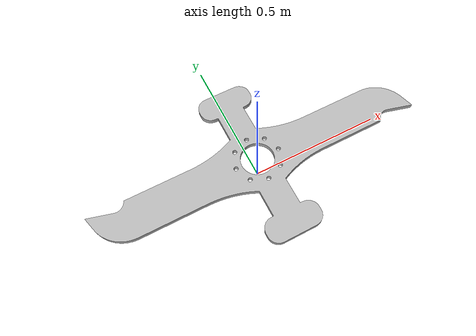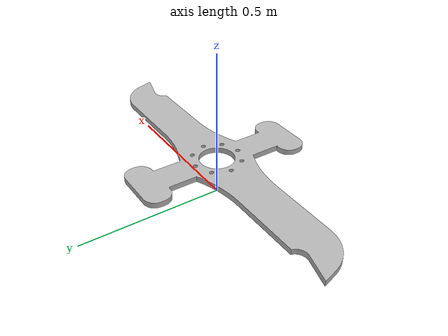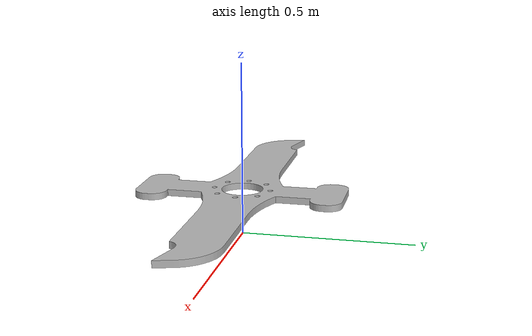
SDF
<?xml version='1.0'?>
<sdf version="1.6">
  <model name="spinner">
    <link name="spinner_link">
      <pose>0 0 0.1143 1.5708 0 0</pose>
      <inertial>
        <mass>31.751</mass>
        <inertia>
          <ixx>0.461</ixx>
          <ixy>0</ixy>
          <ixz>0</ixz>
          <iyy>2.897</iyy>
          <iyz>0</iyz>
          <izz>2.437</izz>
        </inertia>
      </inertial>
      <collision name="spinner_collision">
        <geometry>
          <mesh>
            <uri>file://meshes/BSWeapon_Stablizers1.stl</uri>
            <scale>1 1 1</scale>
          </mesh>
        </geometry>
      </collision>
      <visual name="spinner_visual">
        <geometry>
          <mesh>
            <uri>file://meshes/BSWeapon_Stablizers1.stl</uri>
            <scale>1 1 1</scale>
          </mesh>
        </geometry>
      </visual>
      <sensor name='spinner_imu' type='imu'>
      </sensor>
    </link>
  </model>
</sdf>
